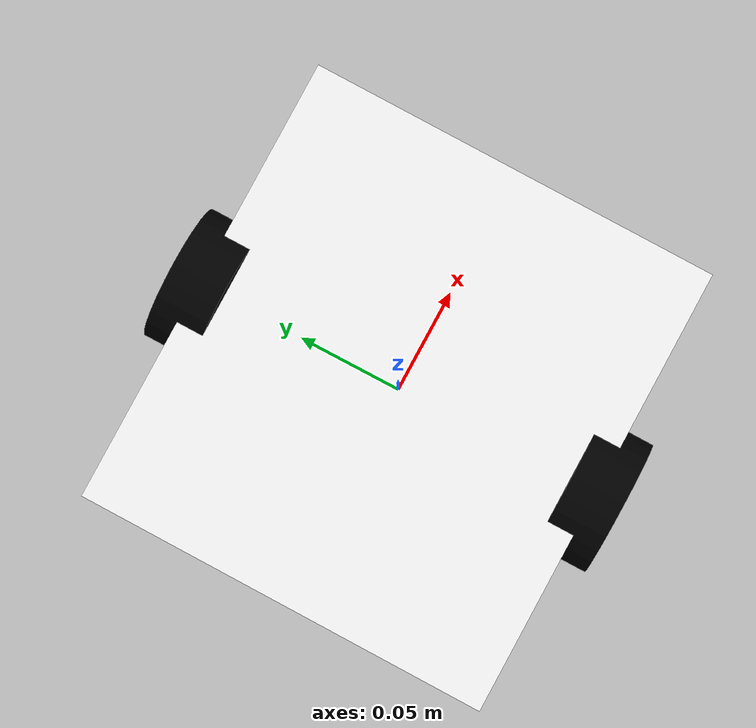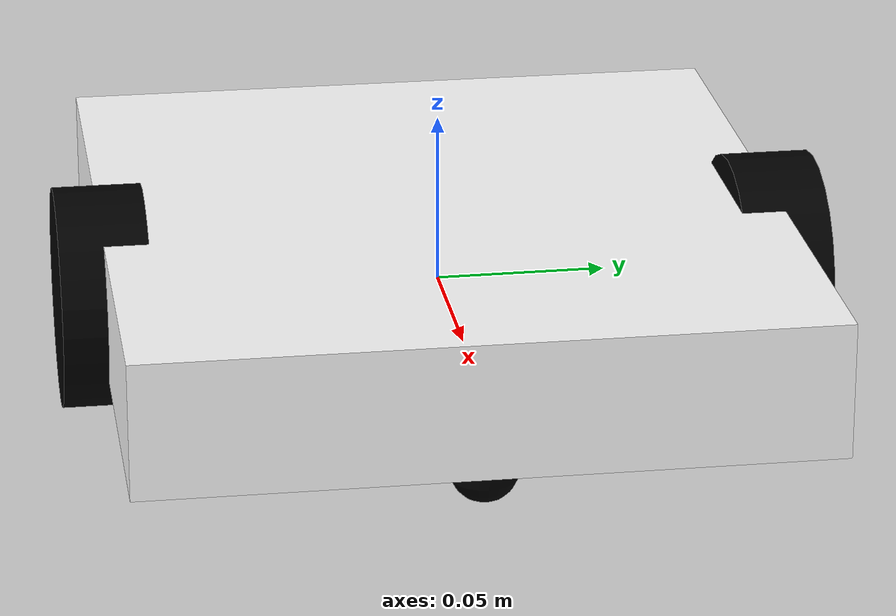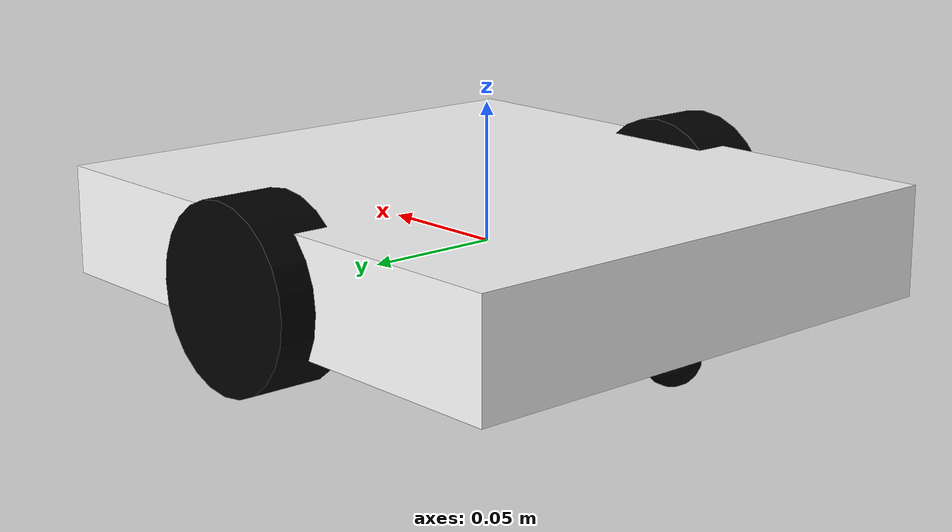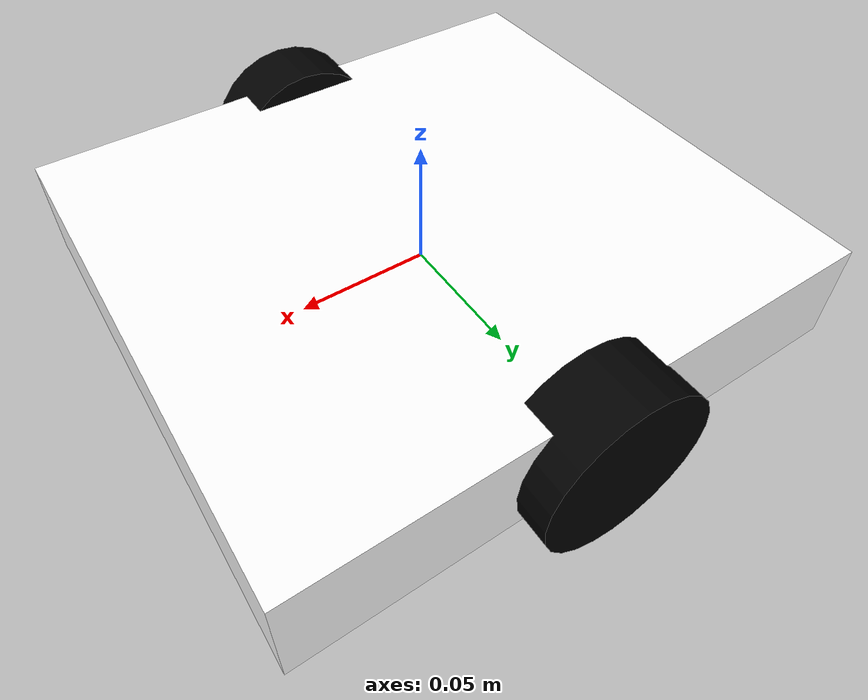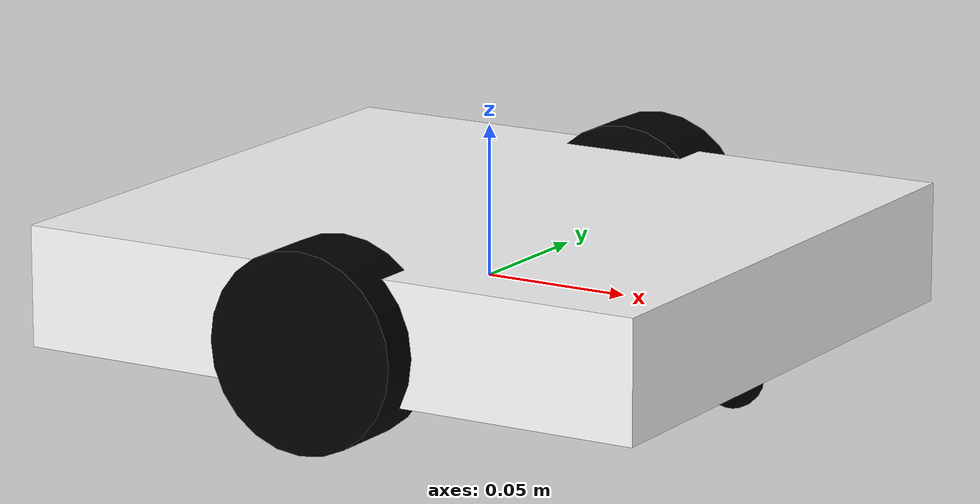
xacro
<?xml version="1.0"?>
<robot xmlns:xacro="http://www.ros.org/wiki/xacro"  >

    <xacro:include filename="inertial_macros.xacro" />

    <xacro:property name="chassis_length" value="0.22"/>
    <xacro:property name="chassis_width" value="0.2"/>
    <xacro:property name="chassis_height" value="0.04"/>
    <xacro:property name="chassis_mass" value="0.5"/>
    <xacro:property name="wheel_radius" value="0.0325"/>
    <xacro:property name="wheel_thickness" value="0.026"/>
    <xacro:property name="wheel_mass" value="0.05"/>
    <xacro:property name="wheel_offset_x" value="${chassis_length/2}"/>
    <xacro:property name="wheel_offset_y" value="${chassis_width/2}"/>
    <xacro:property name="wheel_offset_z" value="${wheel_radius/2}"/>
    <xacro:property name="caster_wheel_radius" value="0.010"/>
    <xacro:property name="caster_wheel_mass" value="0.01"/>
    <xacro:property name="caster_wheel_offset_x" value="0.02"/>
    <xacro:property name="caster_wheel_offset_z" value="-0.005"/>

    <material name="white">
        <color rgba="1 1 1 1" />
    </material>

    <material name="orange">
        <color rgba="1 0.3 0.1 1" />
    </material>

    <material name="blue">
        <color rgba="0.2 0.2 1 1" />
    </material>

    <material name="black">
        <color rgba="0 0 0 1" />
    </material>

    <!-- BASE LINK -->

    <link name="base_link">
    </link>

    <!-- CHASSIS LINK -->
    <joint name="chassis_joint" type="fixed">
        <parent link="base_link" />
        <child link="chassis"/>
        <origin xyz="${-wheel_offset_x} 0 ${-wheel_offset_z}"/>
    </joint>

    <link name="chassis">
        <visual>
            <origin xyz="${chassis_length/2} 0 ${chassis_height/2}"/>
            <geometry>
                <box size="${chassis_length} ${chassis_width} ${chassis_height}"/>
            </geometry>
            <material name="white" />
        </visual>
        <collision>
            <origin xyz="${chassis_length/2} 0 ${chassis_height/2}"/>
            <geometry>
                <box size="${chassis_length} ${chassis_width} ${chassis_height}"/>
            </geometry>
        </collision>
        <xacro:inertial_box mass="0.5" x="${chassis_length}" y="${chassis_width}" z="${chassis_height}">
            <origin xyz="${chassis_length/2} 0 ${chassis_height/2}" rpy="0 0 0"/>
        </xacro:inertial_box>
    </link>

    <gazebo reference="chassis">
        <material>Gazebo/White</material>
    </gazebo>

    <!-- LEFT WHEEL LINK -->

    <joint name="left_wheel_joint" type="continuous">
        <parent link="base_link" />
        <child link="left_wheel" />
        <origin xyz="0 ${-wheel_offset_y} 0" rpy="-${pi/2} 0 0" />
        <axis xyz="0 0 1" />
    </joint>

    <link name="left_wheel">
        <visual>
            <geometry>
                <cylinder radius="${wheel_radius}" length="${wheel_thickness}"/>
            </geometry>
            <material name="black" />
        </visual>
        <collision>
            <geometry>
                <sphere radius="${wheel_radius}"/>
            </geometry>
        </collision>
        <xacro:inertial_cylinder mass="${wheel_mass}" length="${wheel_thickness}" radius="${wheel_radius}">
            <origin xyz="0 0 0" rpy="0 0 0" />
        </xacro:inertial_cylinder>
    </link>

    <gazebo reference="left_wheel">
        <material>Gazebo/Black</material>
    </gazebo>
     <!-- RIGHT WHEEL LINK -->

    <joint name="right_wheel_joint" type="continuous">
        <parent link="base_link" />
        <child link="right_wheel" />
        <origin xyz="0 ${wheel_offset_y} 0" rpy="${pi/2} 0 0" />
        <axis xyz="0 0 -1" />
    </joint>

    <link name="right_wheel">
        <visual>
            <geometry>
                <cylinder radius="${wheel_radius}" length="${wheel_thickness}"/>
            </geometry>
            <material name="black" />
        </visual>
        <collision>
            <geometry>
                <sphere radius="${wheel_radius}"/>
            </geometry>
        </collision>
         <xacro:inertial_cylinder mass="${wheel_mass}" length="${wheel_thickness}" radius="${wheel_radius}">
            <origin xyz="0 0 0" rpy="0 0 0" />
        </xacro:inertial_cylinder>
    </link>

    <gazebo reference="right_wheel">
        <material>Gazebo/Black</material>
    </gazebo>

    <!---BACKWARD CASTER WHEEL LINK -->

    <joint name="backward_caster_wheel_joint" type="fixed">
        <parent link="chassis" />
        <child link="backward_caster_wheel" />
        <origin xyz="${caster_wheel_offset_x} 0 ${caster_wheel_offset_z}"/>
    </joint>

    <link name="backward_caster_wheel">
        <visual>
            <geometry>
                <sphere radius="${caster_wheel_radius}"/>
            </geometry>
            <material name="black" />
        </visual>
        <collision>
            <geometry>
                <sphere radius="${caster_wheel_radius}"/>
            </geometry>
        </collision>
        <xacro:inertial_sphere mass="${caster_wheel_mass}" radius="${caster_wheel_radius}">
            <origin xyz="0 0 0" rpy="0 0 0" />
        </xacro:inertial_sphere>
    </link>

    <gazebo reference="backward_caster_wheel">
        <material>Gazebo/Black</material>
        <mu1 value="0.001"/>
        <mu2 value="0.001"/>
    </gazebo>

    <!---FORWARD CASTER WHEEL LINK -->

     <joint name="forward_caster_wheel_joint" type="fixed">
        <parent link="chassis" />
        <child link="forward_caster_wheel" />
        <origin xyz="${chassis_length - caster_wheel_offset_x} 0 ${caster_wheel_offset_z}"/>
    </joint>

    <link name="forward_caster_wheel">
        <visual>
            <geometry>
                <sphere radius="${caster_wheel_radius}"/>
            </geometry>
            <material name="black" />
        </visual>
        <collision>
            <geometry>
                <sphere radius="${caster_wheel_radius}"/>
            </geometry>
        </collision>
        <xacro:inertial_sphere mass="${caster_wheel_mass}" radius="${caster_wheel_radius}">
            <origin xyz="0 0 0" rpy="0 0 0" />
        </xacro:inertial_sphere>
    </link>

    <gazebo reference="forward_caster_wheel">
        <material>Gazebo/Black</material>
        <mu1 value="0.001"/>
        <mu2 value="0.001"/>
    </gazebo>

</robot>
